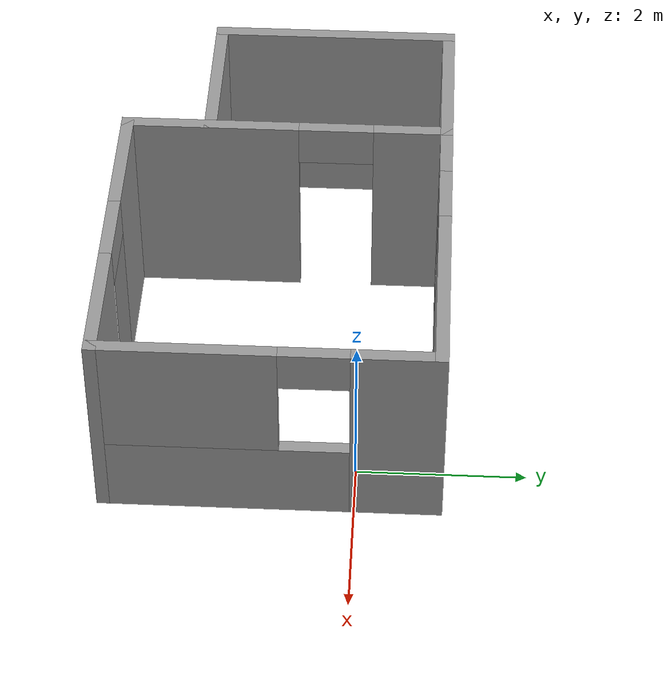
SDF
<?xml version='1.0'?>
<sdf version='1.6'>
  <model name='Small_Hospital_Room'>
    <pose frame=''>-2.29599 -0.979467 0 0 -0 0</pose>
    <link name='Wall_11'>
      <pose frame=''>0.925 1.925 0 0 -0 0</pose>
      <visual name='Wall_11_Visual_0'>
        <pose frame=''>-1.59335 0 1.25 0 -0 0</pose>
        <geometry>
          <box>
            <size>0.813306 0.15 2.5</size>
          </box>
        </geometry>
        <material>
          <script>
            <uri>file://media/materials/scripts/gazebo.material</uri>
            <name>Gazebo/Grey</name>
          </script>
          <ambient>1 1 1 1</ambient>
        </material>
        <meta>
          <layer>0</layer>
        </meta>
      </visual>
      <collision name='Wall_11_Collision_0'>
        <geometry>
          <box>
            <size>0.813306 0.15 2.5</size>
          </box>
        </geometry>
        <pose frame=''>-1.59335 0 1.25 0 -0 0</pose>
      </collision>
      <visual name='Wall_11_Visual_1'>
        <pose frame=''>0.406653 0 0.5 0 -0 0</pose>
        <geometry>
          <box>
            <size>3.18669 0.15 1</size>
          </box>
        </geometry>
        <material>
          <script>
            <uri>file://media/materials/scripts/gazebo.material</uri>
            <name>Gazebo/Grey</name>
          </script>
          <ambient>1 1 1 1</ambient>
        </material>
        <meta>
          <layer>0</layer>
        </meta>
      </visual>
      <collision name='Wall_11_Collision_1'>
        <geometry>
          <box>
            <size>3.18669 0.15 1</size>
          </box>
        </geometry>
        <pose frame=''>0.406653 0 0.5 0 -0 0</pose>
      </collision>
      <visual name='Wall_11_Visual_2'>
        <pose frame=''>0.806653 0 1.75 0 -0 0</pose>
        <geometry>
          <box>
            <size>2.38669 0.15 1.5</size>
          </box>
        </geometry>
        <material>
          <script>
            <uri>file://media/materials/scripts/gazebo.material</uri>
            <name>Gazebo/Grey</name>
          </script>
          <ambient>1 1 1 1</ambient>
        </material>
        <meta>
          <layer>0</layer>
        </meta>
      </visual>
      <collision name='Wall_11_Collision_2'>
        <geometry>
          <box>
            <size>2.38669 0.15 1.5</size>
          </box>
        </geometry>
        <pose frame=''>0.806653 0 1.75 0 -0 0</pose>
      </collision>
      <visual name='Wall_11_Visual_3'>
        <pose frame=''>-0.786694 0 2.25 0 -0 0</pose>
        <geometry>
          <box>
            <size>0.8 0.15 0.5</size>
          </box>
        </geometry>
        <material>
          <script>
            <uri>file://media/materials/scripts/gazebo.material</uri>
            <name>Gazebo/Grey</name>
          </script>
          <ambient>1 1 1 1</ambient>
        </material>
        <meta>
          <layer>0</layer>
        </meta>
      </visual>
      <collision name='Wall_11_Collision_3'>
        <geometry>
          <box>
            <size>0.8 0.15 0.5</size>
          </box>
        </geometry>
        <pose frame=''>-0.786694 0 2.25 0 -0 0</pose>
      </collision>
    </link>
    <link name='Wall_12'>
      <pose frame=''>2.85 -0 0 0 -0 -1.5708</pose>
      <visual name='Wall_12_Visual_0'>
        <pose frame=''>-1.46302 0 1.25 0 -0 0</pose>
        <geometry>
          <box>
            <size>1.07396 0.15 2.5</size>
          </box>
        </geometry>
        <material>
          <script>
            <uri>file://media/materials/scripts/gazebo.material</uri>
            <name>Gazebo/Grey</name>
          </script>
          <ambient>1 1 1 1</ambient>
        </material>
        <meta>
          <layer>0</layer>
        </meta>
      </visual>
      <collision name='Wall_12_Collision_0'>
        <geometry>
          <box>
            <size>1.07396 0.15 2.5</size>
          </box>
        </geometry>
        <pose frame=''>-1.46302 0 1.25 0 -0 0</pose>
      </collision>
      <visual name='Wall_12_Visual_1'>
        <pose frame=''>0.536982 0 0.5 0 -0 0</pose>
        <geometry>
          <box>
            <size>2.92604 0.15 1</size>
          </box>
        </geometry>
        <material>
          <script>
            <uri>file://media/materials/scripts/gazebo.material</uri>
            <name>Gazebo/Grey</name>
          </script>
          <ambient>1 1 1 1</ambient>
        </material>
        <meta>
          <layer>0</layer>
        </meta>
      </visual>
      <collision name='Wall_12_Collision_1'>
        <geometry>
          <box>
            <size>2.92604 0.15 1</size>
          </box>
        </geometry>
        <pose frame=''>0.536982 0 0.5 0 -0 0</pose>
      </collision>
      <visual name='Wall_12_Visual_2'>
        <pose frame=''>0.936982 0 1.75 0 -0 0</pose>
        <geometry>
          <box>
            <size>2.12604 0.15 1.5</size>
          </box>
        </geometry>
        <material>
          <script>
            <uri>file://media/materials/scripts/gazebo.material</uri>
            <name>Gazebo/Grey</name>
          </script>
          <ambient>1 1 1 1</ambient>
        </material>
        <meta>
          <layer>0</layer>
        </meta>
      </visual>
      <collision name='Wall_12_Collision_2'>
        <geometry>
          <box>
            <size>2.12604 0.15 1.5</size>
          </box>
        </geometry>
        <pose frame=''>0.936982 0 1.75 0 -0 0</pose>
      </collision>
      <visual name='Wall_12_Visual_3'>
        <pose frame=''>-0.526037 0 2.25 0 -0 0</pose>
        <geometry>
          <box>
            <size>0.8 0.15 0.5</size>
          </box>
        </geometry>
        <material>
          <script>
            <uri>file://media/materials/scripts/gazebo.material</uri>
            <name>Gazebo/Grey</name>
          </script>
          <ambient>1 1 1 1</ambient>
        </material>
        <meta>
          <layer>0</layer>
        </meta>
      </visual>
      <collision name='Wall_12_Collision_3'>
        <geometry>
          <box>
            <size>0.8 0.15 0.5</size>
          </box>
        </geometry>
        <pose frame=''>-0.526037 0 2.25 0 -0 0</pose>
      </collision>
    </link>
    <link name='Wall_13'>
      <pose frame=''>0.925 -1.925 0 0 -0 3.14159</pose>
      <visual name='Wall_13_Visual_0'>
        <pose frame=''>-1.21845 0 1.25 0 -0 0</pose>
        <geometry>
          <box>
            <size>1.56311 0.15 2.5</size>
          </box>
        </geometry>
        <material>
          <script>
            <uri>file://media/materials/scripts/gazebo.material</uri>
            <name>Gazebo/Grey</name>
          </script>
          <ambient>1 1 1 1</ambient>
        </material>
        <meta>
          <layer>0</layer>
        </meta>
      </visual>
      <collision name='Wall_13_Collision_0'>
        <geometry>
          <box>
            <size>1.56311 0.15 2.5</size>
          </box>
        </geometry>
        <pose frame=''>-1.21845 0 1.25 0 -0 0</pose>
      </collision>
      <visual name='Wall_13_Visual_1'>
        <pose frame=''>1.23155 0 1.25 0 -0 0</pose>
        <geometry>
          <box>
            <size>1.53689 0.15 2.5</size>
          </box>
        </geometry>
        <material>
          <script>
            <uri>file://media/materials/scripts/gazebo.material</uri>
            <name>Gazebo/Grey</name>
          </script>
          <ambient>1 1 1 1</ambient>
        </material>
        <meta>
          <layer>0</layer>
        </meta>
      </visual>
      <collision name='Wall_13_Collision_1'>
        <geometry>
          <box>
            <size>1.53689 0.15 2.5</size>
          </box>
        </geometry>
        <pose frame=''>1.23155 0 1.25 0 -0 0</pose>
      </collision>
      <visual name='Wall_13_Visual_2'>
        <pose frame=''>0.013111 0 2.25 0 -0 0</pose>
        <geometry>
          <box>
            <size>0.9 0.15 0.5</size>
          </box>
        </geometry>
        <material>
          <script>
            <uri>file://media/materials/scripts/gazebo.material</uri>
            <name>Gazebo/Grey</name>
          </script>
          <ambient>1 1 1 1</ambient>
        </material>
        <meta>
          <layer>0</layer>
        </meta>
      </visual>
      <collision name='Wall_13_Collision_2'>
        <geometry>
          <box>
            <size>0.9 0.15 0.5</size>
          </box>
        </geometry>
        <pose frame=''>0.013111 0 2.25 0 -0 0</pose>
      </collision>
    </link>
    <link name='Wall_14'>
      <pose frame=''>-1 -0 0 0 -0 1.5708</pose>
      <visual name='Wall_14_Visual_0'>
        <pose frame=''>-0.927837 0 1.25 0 -0 0</pose>
        <geometry>
          <box>
            <size>2.14432 0.15 2.5</size>
          </box>
        </geometry>
        <material>
          <script>
            <uri>file://media/materials/scripts/gazebo.material</uri>
            <name>Gazebo/Grey</name>
          </script>
          <ambient>1 1 1 1</ambient>
        </material>
        <meta>
          <layer>0</layer>
        </meta>
      </visual>
      <collision name='Wall_14_Collision_0'>
        <geometry>
          <box>
            <size>2.14432 0.15 2.5</size>
          </box>
        </geometry>
        <pose frame=''>-0.927837 0 1.25 0 -0 0</pose>
      </collision>
      <visual name='Wall_14_Visual_1'>
        <pose frame=''>1.52216 0 1.25 0 -0 0</pose>
        <geometry>
          <box>
            <size>0.955675 0.15 2.5</size>
          </box>
        </geometry>
        <material>
          <script>
            <uri>file://media/materials/scripts/gazebo.material</uri>
            <name>Gazebo/Grey</name>
          </script>
          <ambient>1 1 1 1</ambient>
        </material>
        <meta>
          <layer>0</layer>
        </meta>
      </visual>
      <collision name='Wall_14_Collision_1'>
        <geometry>
          <box>
            <size>0.955675 0.15 2.5</size>
          </box>
        </geometry>
        <pose frame=''>1.52216 0 1.25 0 -0 0</pose>
      </collision>
      <visual name='Wall_14_Visual_2'>
        <pose frame=''>0.594325 0 2.25 0 -0 0</pose>
        <geometry>
          <box>
            <size>0.9 0.15 0.5</size>
          </box>
        </geometry>
        <material>
          <script>
            <uri>file://media/materials/scripts/gazebo.material</uri>
            <name>Gazebo/Grey</name>
          </script>
          <ambient>1 1 1 1</ambient>
        </material>
        <meta>
          <layer>0</layer>
        </meta>
      </visual>
      <collision name='Wall_14_Collision_2'>
        <geometry>
          <box>
            <size>0.9 0.15 0.5</size>
          </box>
        </geometry>
        <pose frame=''>0.594325 0 2.25 0 -0 0</pose>
      </collision>
    </link>
    <link name='Wall_15'>
      <collision name='Wall_15_Collision'>
        <geometry>
          <box>
            <size>2 0.15 2.5</size>
          </box>
        </geometry>
        <pose frame=''>0 0 1.25 0 -0 0</pose>
      </collision>
      <visual name='Wall_15_Visual'>
        <pose frame=''>0 0 1.25 0 -0 0</pose>
        <geometry>
          <box>
            <size>2 0.15 2.5</size>
          </box>
        </geometry>
        <material>
          <script>
            <uri>file://media/materials/scripts/gazebo.material</uri>
            <name>Gazebo/Grey</name>
          </script>
          <ambient>1 1 1 1</ambient>
        </material>
        <meta>
          <layer>0</layer>
        </meta>
      </visual>
      <pose frame=''>-1.925 1.925 0 0 -0 3.14159</pose>
    </link>
    <link name='Wall_16'>
      <collision name='Wall_16_Collision'>
        <geometry>
          <box>
            <size>3 0.15 2.5</size>
          </box>
        </geometry>
        <pose frame=''>0 0 1.25 0 -0 0</pose>
      </collision>
      <visual name='Wall_16_Visual'>
        <pose frame=''>0 0 1.25 0 -0 0</pose>
        <geometry>
          <box>
            <size>3 0.15 2.5</size>
          </box>
        </geometry>
        <material>
          <script>
            <uri>file://media/materials/scripts/gazebo.material</uri>
            <name>Gazebo/Grey</name>
          </script>
          <ambient>1 1 1 1</ambient>
        </material>
        <meta>
          <layer>0</layer>
        </meta>
      </visual>
      <pose frame=''>-2.85 0.5 0 0 -0 -1.5708</pose>
    </link>
    <link name='Wall_17'>
      <collision name='Wall_17_Collision'>
        <geometry>
          <box>
            <size>2 0.15 2.5</size>
          </box>
        </geometry>
        <pose frame=''>0 0 1.25 0 -0 0</pose>
      </collision>
      <visual name='Wall_17_Visual'>
        <pose frame=''>0 0 1.25 0 -0 0</pose>
        <geometry>
          <box>
            <size>2 0.15 2.5</size>
          </box>
        </geometry>
        <material>
          <script>
            <uri>file://media/materials/scripts/gazebo.material</uri>
            <name>Gazebo/Grey</name>
          </script>
          <ambient>1 1 1 1</ambient>
        </material>
        <meta>
          <layer>0</layer>
        </meta>
      </visual>
      <pose frame=''>-1.925 -0.925 0 0 -0 0</pose>
    </link>
    <static>1</static>
  </model>
</sdf>
